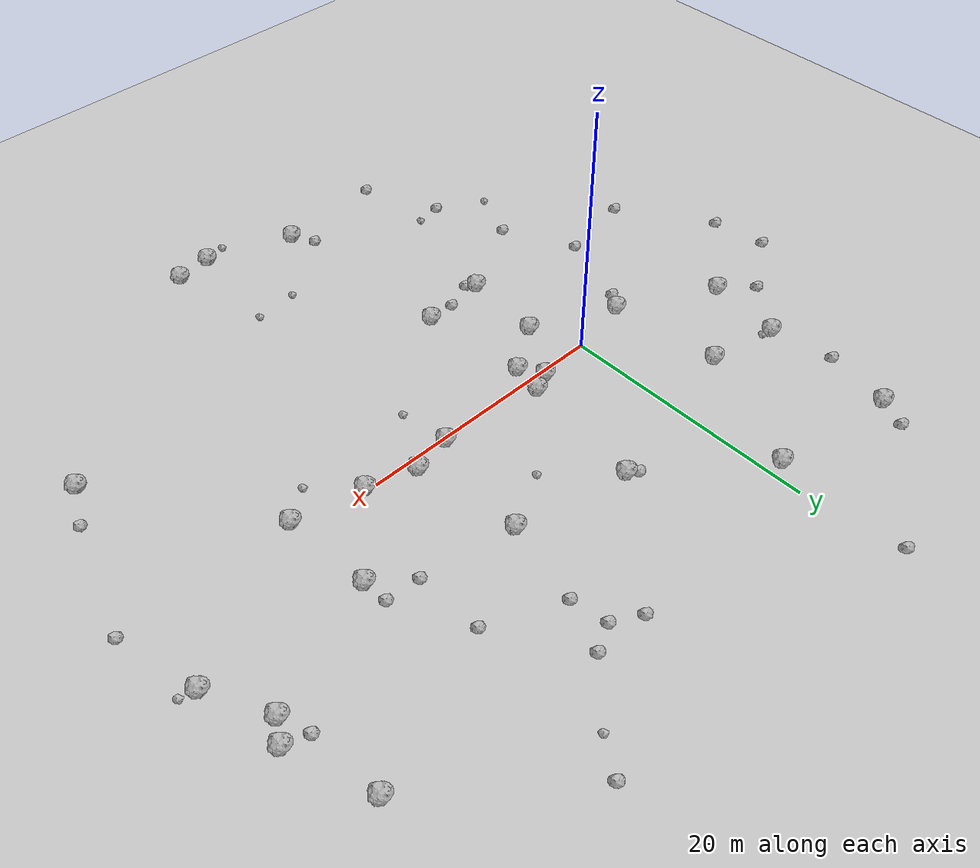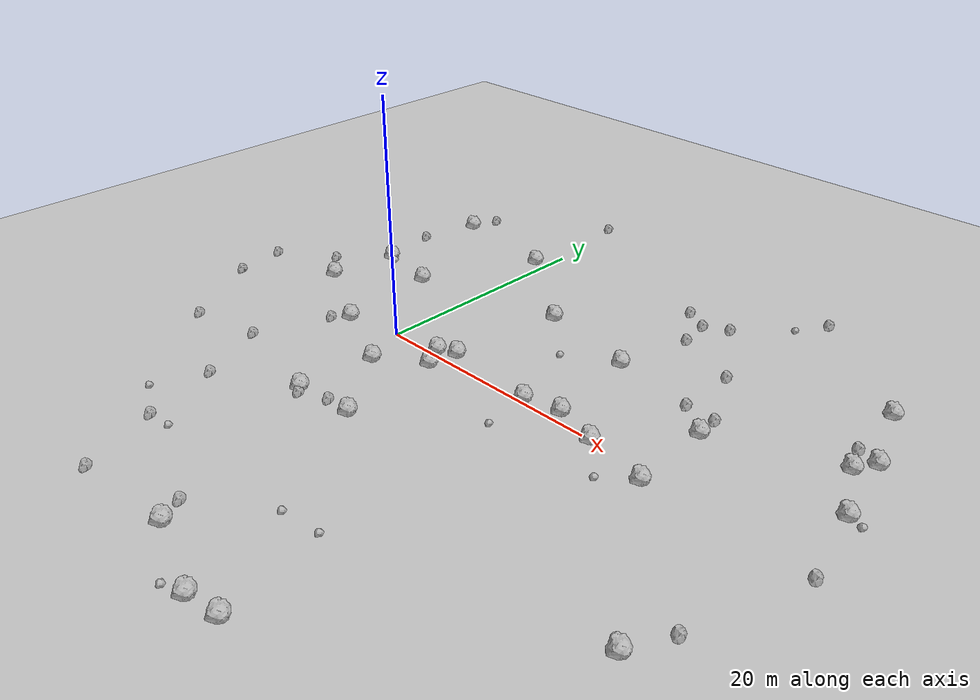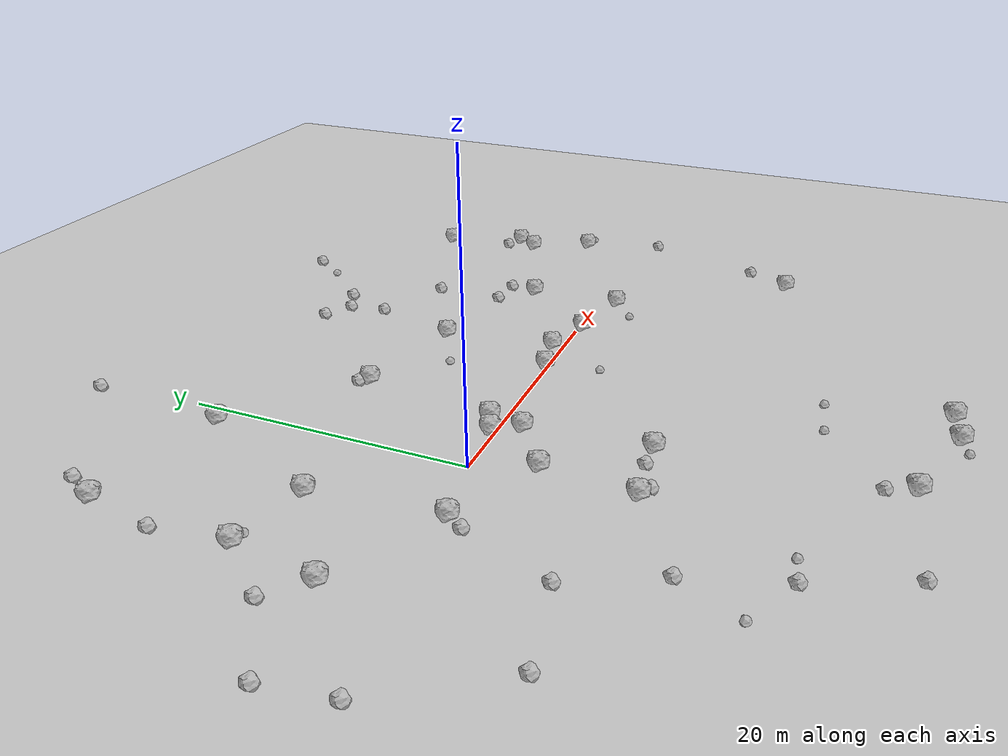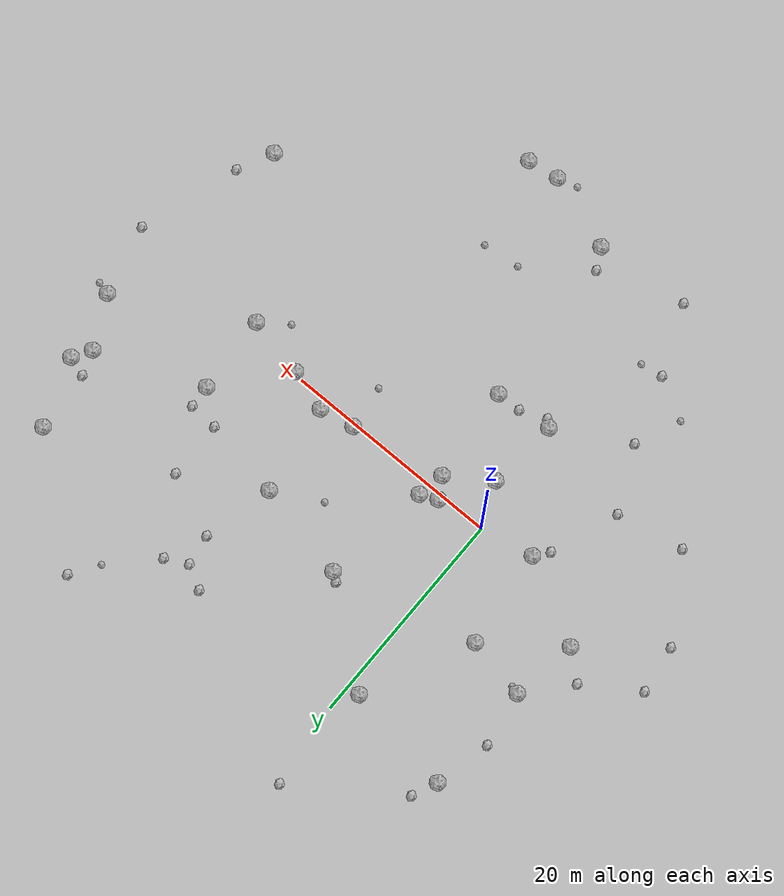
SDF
<sdf version="1.6">
 <world name="default">
  <include><uri>model://custom_ground</uri></include>
  <include><uri>model://sun</uri></include>
  <model name="rock1_0_0">
   <include><uri>model://rock1</uri><pose>1.1730208413784347 -10.354745727355265 0.5 0 0 0</pose></include>
  </model>
  <model name="rock1_0_1">
   <include><uri>model://rock1</uri><pose>34.270584932607896 17.3468146963379 0.5 0 0 0</pose></include>
  </model>
  <model name="rock1_0_2">
   <include><uri>model://rock1</uri><pose>20.87830525166615 -0.18826111654771083 0.5 0 0 0</pose></include>
  </model>
  <model name="rock1_0_3">
   <include><uri>model://rock1</uri><pose>25.82977714893051 5.7306714882587 0.5 0 0 0</pose></include>
  </model>
  <model name="rock1_0_4">
   <include><uri>model://rock1</uri><pose>-1.1485062455434765 17.55596675857769 0.5 0 0 0</pose></include>
  </model>
  <model name="rock1_0_5">
   <include><uri>model://rock1</uri><pose>7.299424982305958 10.941195743640115 0.5 0 0 0</pose></include>
  </model>
  <model name="rock1_0_6">
   <include><uri>model://rock1</uri><pose>5.511067473386593 -1.3386667247726436 0.5 0 0 0</pose></include>
  </model>
  <model name="rock1_0_7">
   <include><uri>model://rock1</uri><pose>-4.800338817938361 -0.9646563374148833 0.5 0 0 0</pose></include>
  </model>
  <model name="rock1_0_8">
   <include><uri>model://rock1</uri><pose>1.7243222807089325 -3.9226094657035055 0.5 0 0 0</pose></include>
  </model>
  <model name="rock1_0_9">
   <include><uri>model://rock1</uri><pose>34.680886185822224 -13.67190027514009 0.5 0 0 0</pose></include>
  </model>
  <model name="rock1_0_10">
   <include><uri>model://rock1</uri><pose>17.42242431972999 -27.278784392804756 0.5 0 0 0</pose></include>
  </model>
  <model name="rock1_0_11">
   <include><uri>model://rock1</uri><pose>-5.826621163581546 7.85392033275366 0.5 0 0 0</pose></include>
  </model>
  <model name="rock1_0_12">
   <include><uri>model://rock1</uri><pose>36.39124130104978 11.222762520245254 0.5 0 0 0</pose></include>
  </model>
  <model name="rock1_0_13">
   <include><uri>model://rock1</uri><pose>7.825586587774541 -25.421972024456828 0.5 0 0 0</pose></include>
  </model>
  <model name="rock1_0_14">
   <include><uri>model://rock1</uri><pose>5.949339331311123 1.1539089222396441 0.5 0 0 0</pose></include>
  </model>
  <model name="rock1_0_15">
   <include><uri>model://rock1</uri><pose>4.431223672499311 0.4549090389089443 0.5 0 0 0</pose></include>
  </model>
  <model name="rock1_0_16">
   <include><uri>model://rock1</uri><pose>35.383288256690655 9.561968902626447 0.5 0 0 0</pose></include>
  </model>
  <model name="rock1_0_17">
   <include><uri>model://rock1</uri><pose>-12.220715956015605 2.9491262359322192 0.5 0 0 0</pose></include>
  </model>
  <model name="rock1_0_18">
   <include><uri>model://rock1</uri><pose>6.3384650209659235 -9.866147921435978 0.5 0 0 0</pose></include>
  </model>
  <model name="rock1_0_19">
   <include><uri>model://rock1</uri><pose>37.648271652145546 4.981853561375409 0.5 0 0 0</pose></include>
  </model>
  <model name="rock1_0_20">
   <include><uri>model://rock1</uri><pose>-11.007802012437653 19.005656532065416 0.5 0 0 0</pose></include>
  </model>
  <model name="rock1_0_21">
   <include><uri>model://rock1</uri><pose>14.551939133200555 -27.696418850285983 0.5 0 0 0</pose></include>
  </model>
  <model name="rock1_0_22">
   <include><uri>model://rock1</uri><pose>15.952758464865077 9.112043096362868 0.5 0 0 0</pose></include>
  </model>
  <model name="rock1_0_23">
   <include><uri>model://rock1</uri><pose>26.2197707374182 -1.311607423223176 0.5 0 0 0</pose></include>
  </model>
  <model name="rock1_0_24">
   <include><uri>model://rock1</uri><pose>14.03743075063013 0.28559652823315673 0.5 0 0 0</pose></include>
  </model>
  <model name="rock1_0_25">
   <include><uri>model://rock1</uri><pose>17.15347526345971 0.9295901771451369 0.5 0 0 0</pose></include>
  </model>
  <model name="rock1_0_26">
   <include><uri>model://rock1</uri><pose>-11.312378059702962 8.898292964293816 0.5 0 0 0</pose></include>
  </model>
  <model name="rock2_0_0">
   <include><uri>model://rock2</uri><pose>-5.317751722900205 -14.028546995436779 0.3 0 0 0</pose></include>
  </model>
  <model name="rock2_0_1">
   <include><uri>model://rock2</uri><pose>6.811108051944736 -23.604997085503655 0.3 0 0 0</pose></include>
  </model>
  <model name="rock2_0_2">
   <include><uri>model://rock2</uri><pose>-10.038061058570204 21.280087525120173 0.3 0 0 0</pose></include>
  </model>
  <model name="rock2_0_3">
   <include><uri>model://rock2</uri><pose>19.046577344032436 19.328231470909635 0.3 0 0 0</pose></include>
  </model>
  <model name="rock2_0_4">
   <include><uri>model://rock2</uri><pose>-12.193202512118555 13.893477971123922 0.3 0 0 0</pose></include>
  </model>
  <model name="rock2_0_5">
   <include><uri>model://rock2</uri><pose>-0.8862950837829011 27.64703247035967 0.3 0 0 0</pose></include>
  </model>
  <model name="rock2_0_6">
   <include><uri>model://rock2</uri><pose>1.7653986905135568 -10.911110584322717 0.3 0 0 0</pose></include>
  </model>
  <model name="rock2_0_7">
   <include><uri>model://rock2</uri><pose>17.035739397517666 18.31454553610149 0.3 0 0 0</pose></include>
  </model>
  <model name="rock2_0_8">
   <include><uri>model://rock2</uri><pose>34.63109638135072 11.803149313827738 0.3 0 0 0</pose></include>
  </model>
  <model name="rock2_0_9">
   <include><uri>model://rock2</uri><pose>-5.796391454454923 -2.239009337583859 0.3 0 0 0</pose></include>
  </model>
  <model name="rock2_0_10">
   <include><uri>model://rock2</uri><pose>39.189105294124595 -1.3732505660185303 0.3 0 0 0</pose></include>
  </model>
  <model name="rock2_0_11">
   <include><uri>model://rock2</uri><pose>14.955663652116712 19.480312146962248 0.3 0 0 0</pose></include>
  </model>
  <model name="rock2_0_12">
   <include><uri>model://rock2</uri><pose>-18.786495094872105 -2.474235368206166 0.3 0 0 0</pose></include>
  </model>
  <model name="rock2_0_13">
   <include><uri>model://rock2</uri><pose>-3.3785405658337417 -20.069483958694473 0.3 0 0 0</pose></include>
  </model>
  <model name="rock2_0_14">
   <include><uri>model://rock2</uri><pose>22.986353852086943 13.125216194875769 0.3 0 0 0</pose></include>
  </model>
  <model name="rock2_0_15">
   <include><uri>model://rock2</uri><pose>4.102013814927766 -9.941035061515748 0.3 0 0 0</pose></include>
  </model>
  <model name="rock2_0_16">
   <include><uri>model://rock2</uri><pose>17.485646800099282 15.526293159770631 0.3 0 0 0</pose></include>
  </model>
  <model name="rock2_0_17">
   <include><uri>model://rock2</uri><pose>-14.192117983213013 -9.620971780972717 0.3 0 0 0</pose></include>
  </model>
  <model name="rock2_0_18">
   <include><uri>model://rock2</uri><pose>23.094252693425915 7.926053227622731 0.3 0 0 0</pose></include>
  </model>
  <model name="rock2_0_19">
   <include><uri>model://rock2</uri><pose>24.373545892818974 25.656507455417618 0.3 0 0 0</pose></include>
  </model>
  <model name="rock2_0_20">
   <include><uri>model://rock2</uri><pose>-14.690530138739499 5.017129164130232 0.3 0 0 0</pose></include>
  </model>
  <model name="rock2_0_21">
   <include><uri>model://rock2</uri><pose>6.530839458401761 11.478333810202649 0.3 0 0 0</pose></include>
  </model>
  <model name="rock2_0_22">
   <include><uri>model://rock2</uri><pose>25.701725404995898 7.74775714177683 0.3 0 0 0</pose></include>
  </model>
  <model name="rock2_0_23">
   <include><uri>model://rock2</uri><pose>36.239036239863836 -10.470440830050368 0.3 0 0 0</pose></include>
  </model>
  <model name="rock2_0_24">
   <include><uri>model://rock2</uri><pose>-19.465989742661826 1.8530717985197178 0.3 0 0 0</pose></include>
  </model>
  <model name="rock2_0_25">
   <include><uri>model://rock2</uri><pose>-0.7693949435323582 -26.180022183311614 0.3 0 0 0</pose></include>
  </model>
  <model name="rock2_0_26">
   <include><uri>model://rock2</uri><pose>-8.075987065724197 -8.392699886481644 0.3 0 0 0</pose></include>
  </model>
  <model name="rock3_0_0">
   <include><uri>model://rock3</uri><pose>-10.640913078729909 8.658573778367483 0.2 0 0 0</pose></include>
  </model>
  <model name="rock3_0_1">
   <include><uri>model://rock3</uri><pose>-1.380441293594739 -19.80047420627591 0.2 0 0 0</pose></include>
  </model>
  <model name="rock3_0_2">
   <include><uri>model://rock3</uri><pose>-7.096697350638596 -18.136988040027262 0.2 0 0 0</pose></include>
  </model>
  <model name="rock3_0_3">
   <include><uri>model://rock3</uri><pose>23.77216217149025 -3.1583819161124147 0.2 0 0 0</pose></include>
  </model>
  <model name="rock3_0_4">
   <include><uri>model://rock3</uri><pose>12.178207172867232 -19.574037493109245 0.2 0 0 0</pose></include>
  </model>
  <model name="rock3_0_5">
   <include><uri>model://rock3</uri><pose>11.65473758816475 6.80548438018441 0.2 0 0 0</pose></include>
  </model>
  <model name="rock3_0_6">
   <include><uri>model://rock3</uri><pose>12.713563625196386 -28.260622464406516 0.2 0 0 0</pose></include>
  </model>
  <model name="rock3_0_7">
   <include><uri>model://rock3</uri><pose>14.475914998047529 -3.7067521397980947 0.2 0 0 0</pose></include>
  </model>
  <model name="rock3_0_8">
   <include><uri>model://rock3</uri><pose>38.77199134829585 4.645848899464461 0.2 0 0 0</pose></include>
  </model>
  <model name="rock3_0_9">
   <include><uri>model://rock3</uri><pose>15.563013034640171 -19.19378786175578 0.2 0 0 0</pose></include>
  </model>
  <model name="rock3_0_10">
   <include><uri>model://rock3</uri><pose>22.69872245788148 23.107924709944193 0.2 0 0 0</pose></include>
  </model>
 </world>
</sdf>
